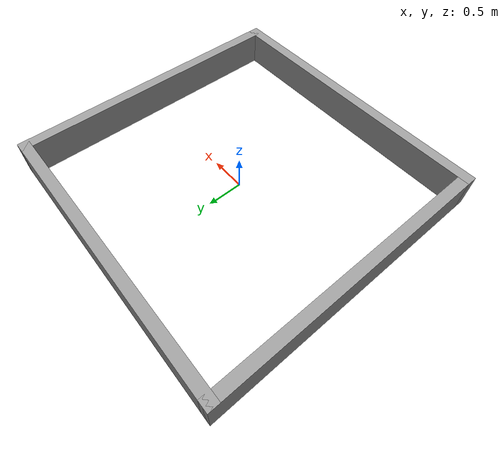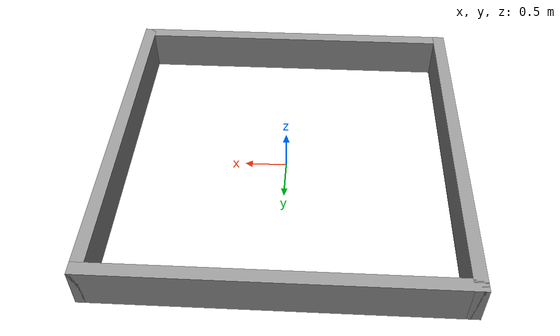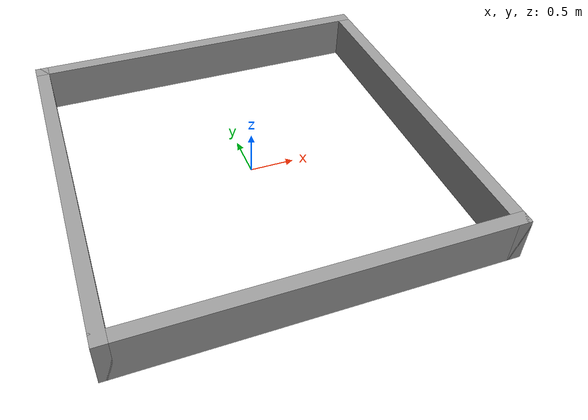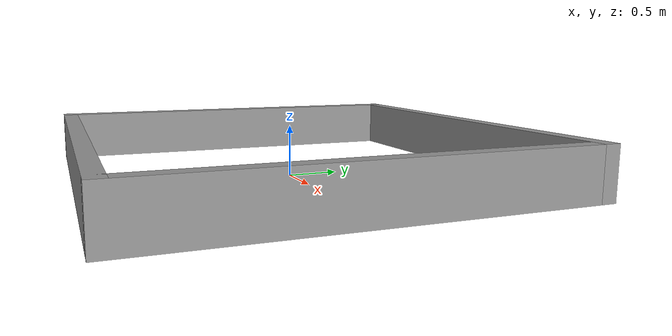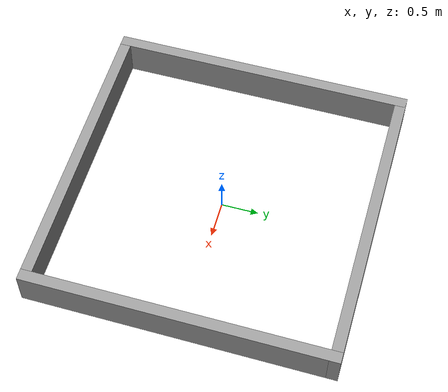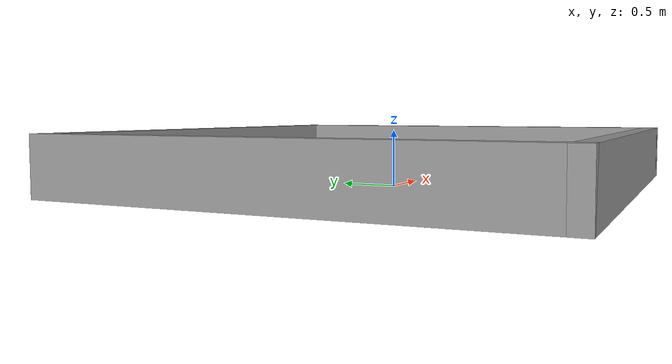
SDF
<?xml version='1.0'?>
<sdf version='1.7'>
  <model name='Outer_Walls2'>
    <link name='Wall_13'>
      <pose>-2 0 0 0 -0 1.5708</pose>
      <self_collide>0</self_collide>
      <enable_wind>0</enable_wind>
      <kinematic>0</kinematic>
      <visual name='Wall_13_Visual'>
        <pose>0 0 0.25 0 -0 0</pose>
        <geometry>
          <box>
            <size>4.15 0.15 0.5</size>
          </box>
        </geometry>
        <material>
          <script>
            <uri>file://media/materials/scripts/gazebo.material</uri>
            <name>Gazebo/Grey</name>
          </script>
          <ambient>1 1 1 1</ambient>
          <shader type='pixel'/>
        </material>
        <meta>
          <layer>0</layer>
        </meta>
        <transparency>0</transparency>
        <cast_shadows>1</cast_shadows>
      </visual>
      <collision name='Wall_13_Collision'>
        <laser_retro>0</laser_retro>
        <max_contacts>10</max_contacts>
        <pose>0 0 0.25 0 -0 0</pose>
        <geometry>
          <box>
            <size>4.15 0.15 0.5</size>
          </box>
        </geometry>
        <surface>
          <friction>
            <ode>
              <mu>1</mu>
              <mu2>1</mu2>
              <fdir1>0 0 0</fdir1>
              <slip1>0</slip1>
              <slip2>0</slip2>
            </ode>
            <torsional>
              <coefficient>1</coefficient>
              <patch_radius>0</patch_radius>
              <surface_radius>0</surface_radius>
              <use_patch_radius>1</use_patch_radius>
              <ode>
                <slip>0</slip>
              </ode>
            </torsional>
          </friction>
          <bounce>
            <restitution_coefficient>0</restitution_coefficient>
            <threshold>1e+06</threshold>
          </bounce>
          <contact>
            <collide_without_contact>0</collide_without_contact>
            <collide_without_contact_bitmask>1</collide_without_contact_bitmask>
            <collide_bitmask>1</collide_bitmask>
            <ode>
              <soft_cfm>0</soft_cfm>
              <soft_erp>0.2</soft_erp>
              <kp>1e+13</kp>
              <kd>1</kd>
              <max_vel>0.01</max_vel>
              <min_depth>0</min_depth>
            </ode>
            <bullet>
              <split_impulse>1</split_impulse>
              <split_impulse_penetration_threshold>-0.01</split_impulse_penetration_threshold>
              <soft_cfm>0</soft_cfm>
              <soft_erp>0.2</soft_erp>
              <kp>1e+13</kp>
              <kd>1</kd>
            </bullet>
          </contact>
        </surface>
      </collision>
    </link>
    <link name='Wall_18'>
      <pose>0 2 0 0 -0 0</pose>
      <self_collide>0</self_collide>
      <enable_wind>0</enable_wind>
      <kinematic>0</kinematic>
      <visual name='Wall_18_Visual'>
        <pose>0 0 0.25 0 -0 0</pose>
        <geometry>
          <box>
            <size>4.15 0.15 0.5</size>
          </box>
        </geometry>
        <material>
          <script>
            <uri>file://media/materials/scripts/gazebo.material</uri>
            <name>Gazebo/Grey</name>
          </script>
          <ambient>1 1 1 1</ambient>
          <shader type='pixel'/>
        </material>
        <meta>
          <layer>0</layer>
        </meta>
        <transparency>0</transparency>
        <cast_shadows>1</cast_shadows>
      </visual>
      <collision name='Wall_18_Collision'>
        <laser_retro>0</laser_retro>
        <max_contacts>10</max_contacts>
        <pose>0 0 0.25 0 -0 0</pose>
        <geometry>
          <box>
            <size>4.15 0.15 0.5</size>
          </box>
        </geometry>
        <surface>
          <friction>
            <ode>
              <mu>1</mu>
              <mu2>1</mu2>
              <fdir1>0 0 0</fdir1>
              <slip1>0</slip1>
              <slip2>0</slip2>
            </ode>
            <torsional>
              <coefficient>1</coefficient>
              <patch_radius>0</patch_radius>
              <surface_radius>0</surface_radius>
              <use_patch_radius>1</use_patch_radius>
              <ode>
                <slip>0</slip>
              </ode>
            </torsional>
          </friction>
          <bounce>
            <restitution_coefficient>0</restitution_coefficient>
            <threshold>1e+06</threshold>
          </bounce>
          <contact>
            <collide_without_contact>0</collide_without_contact>
            <collide_without_contact_bitmask>1</collide_without_contact_bitmask>
            <collide_bitmask>1</collide_bitmask>
            <ode>
              <soft_cfm>0</soft_cfm>
              <soft_erp>0.2</soft_erp>
              <kp>1e+13</kp>
              <kd>1</kd>
              <max_vel>0.01</max_vel>
              <min_depth>0</min_depth>
            </ode>
            <bullet>
              <split_impulse>1</split_impulse>
              <split_impulse_penetration_threshold>-0.01</split_impulse_penetration_threshold>
              <soft_cfm>0</soft_cfm>
              <soft_erp>0.2</soft_erp>
              <kp>1e+13</kp>
              <kd>1</kd>
            </bullet>
          </contact>
        </surface>
      </collision>
    </link>
    <link name='Wall_20'>
      <pose>0 -2 0 0 -0 0</pose>
      <self_collide>0</self_collide>
      <enable_wind>0</enable_wind>
      <kinematic>0</kinematic>
      <gravity>1</gravity>
      <inertial>
        <mass>1</mass>
        <pose>0 0 0 0 -0 0</pose>
        <inertia>
          <ixx>1</ixx>
          <ixy>0</ixy>
          <ixz>0</ixz>
          <iyy>1</iyy>
          <iyz>0</iyz>
          <izz>1</izz>
        </inertia>
      </inertial>
      <visual name='Wall_20_Visual'>
        <pose>0 0 0.25 0 -0 0</pose>
        <geometry>
          <box>
            <size>4.15 0.15 0.5</size>
          </box>
        </geometry>
        <material>
          <script>
            <uri>file://media/materials/scripts/gazebo.material</uri>
            <name>Gazebo/Grey</name>
          </script>
          <ambient>1 1 1 1</ambient>
          <shader type='pixel'>
            <normal_map>__default__</normal_map>
          </shader>
          <diffuse>0.7 0.7 0.7 1</diffuse>
          <specular>0.01 0.01 0.01 1</specular>
          <emissive>0 0 0 1</emissive>
        </material>
        <meta>
          <layer>0</layer>
        </meta>
        <transparency>0</transparency>
        <cast_shadows>1</cast_shadows>
      </visual>
      <collision name='Wall_20_Collision'>
        <laser_retro>0</laser_retro>
        <max_contacts>10</max_contacts>
        <pose>0 0 0.25 0 -0 0</pose>
        <geometry>
          <box>
            <size>4.15 0.15 0.5</size>
          </box>
        </geometry>
        <surface>
          <friction>
            <ode>
              <mu>1</mu>
              <mu2>1</mu2>
              <fdir1>0 0 0</fdir1>
              <slip1>0</slip1>
              <slip2>0</slip2>
            </ode>
            <torsional>
              <coefficient>1</coefficient>
              <patch_radius>0</patch_radius>
              <surface_radius>0</surface_radius>
              <use_patch_radius>1</use_patch_radius>
              <ode>
                <slip>0</slip>
              </ode>
            </torsional>
          </friction>
          <bounce>
            <restitution_coefficient>0</restitution_coefficient>
            <threshold>1e+06</threshold>
          </bounce>
          <contact>
            <collide_without_contact>0</collide_without_contact>
            <collide_without_contact_bitmask>1</collide_without_contact_bitmask>
            <collide_bitmask>1</collide_bitmask>
            <ode>
              <soft_cfm>0</soft_cfm>
              <soft_erp>0.2</soft_erp>
              <kp>1e+13</kp>
              <kd>1</kd>
              <max_vel>0.01</max_vel>
              <min_depth>0</min_depth>
            </ode>
            <bullet>
              <split_impulse>1</split_impulse>
              <split_impulse_penetration_threshold>-0.01</split_impulse_penetration_threshold>
              <soft_cfm>0</soft_cfm>
              <soft_erp>0.2</soft_erp>
              <kp>1e+13</kp>
              <kd>1</kd>
            </bullet>
          </contact>
        </surface>
      </collision>
    </link>
    <link name='Wall_22'>
      <pose>2 0 0 0 -0 1.5708</pose>
      <self_collide>0</self_collide>
      <enable_wind>0</enable_wind>
      <kinematic>0</kinematic>
      <visual name='Wall_22_Visual'>
        <pose>0 0 0.25 0 -0 0</pose>
        <geometry>
          <box>
            <size>4.15 0.15 0.5</size>
          </box>
        </geometry>
        <material>
          <script>
            <uri>file://media/materials/scripts/gazebo.material</uri>
            <name>Gazebo/Grey</name>
          </script>
          <ambient>1 1 1 1</ambient>
          <shader type='pixel'/>
        </material>
        <meta>
          <layer>0</layer>
        </meta>
        <transparency>0</transparency>
        <cast_shadows>1</cast_shadows>
      </visual>
      <collision name='Wall_22_Collision'>
        <laser_retro>0</laser_retro>
        <max_contacts>10</max_contacts>
        <pose>0 0 0.25 0 -0 0</pose>
        <geometry>
          <box>
            <size>4.15 0.15 0.5</size>
          </box>
        </geometry>
        <surface>
          <friction>
            <ode>
              <mu>1</mu>
              <mu2>1</mu2>
              <fdir1>0 0 0</fdir1>
              <slip1>0</slip1>
              <slip2>0</slip2>
            </ode>
            <torsional>
              <coefficient>1</coefficient>
              <patch_radius>0</patch_radius>
              <surface_radius>0</surface_radius>
              <use_patch_radius>1</use_patch_radius>
              <ode>
                <slip>0</slip>
              </ode>
            </torsional>
          </friction>
          <bounce>
            <restitution_coefficient>0</restitution_coefficient>
            <threshold>1e+06</threshold>
          </bounce>
          <contact>
            <collide_without_contact>0</collide_without_contact>
            <collide_without_contact_bitmask>1</collide_without_contact_bitmask>
            <collide_bitmask>1</collide_bitmask>
            <ode>
              <soft_cfm>0</soft_cfm>
              <soft_erp>0.2</soft_erp>
              <kp>1e+13</kp>
              <kd>1</kd>
              <max_vel>0.01</max_vel>
              <min_depth>0</min_depth>
            </ode>
            <bullet>
              <split_impulse>1</split_impulse>
              <split_impulse_penetration_threshold>-0.01</split_impulse_penetration_threshold>
              <soft_cfm>0</soft_cfm>
              <soft_erp>0.2</soft_erp>
              <kp>1e+13</kp>
              <kd>1</kd>
            </bullet>
          </contact>
        </surface>
      </collision>
    </link>
    <static>1</static>
    <allow_auto_disable>1</allow_auto_disable>
  </model>
</sdf>
